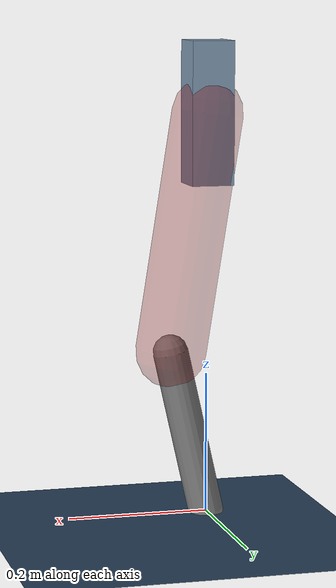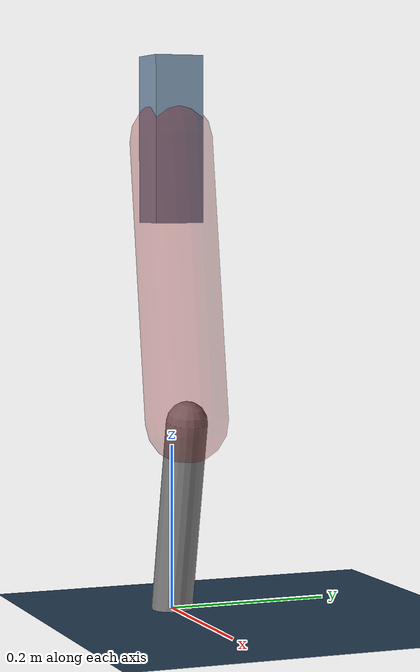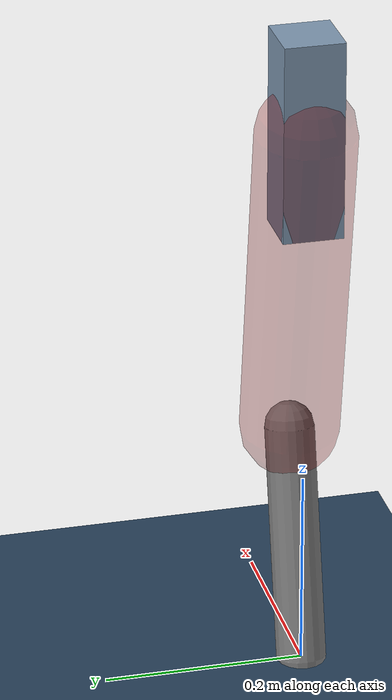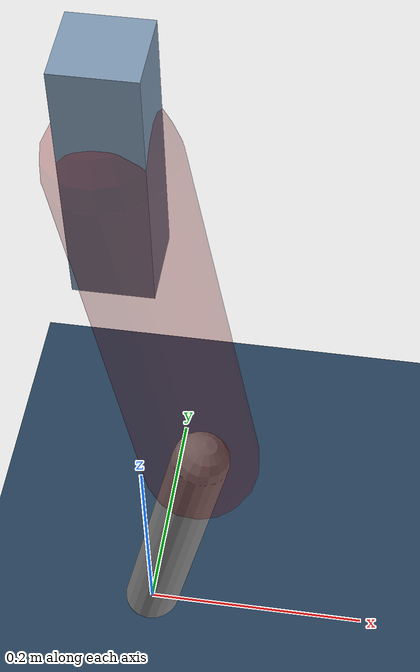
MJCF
<mujoco model="Hopper2D">
	<compiler inertiafromgeom="true" angle="radian" />
	<option timestep="0.001" integrator="implicit" cone="elliptic" solver="Newton" tolerance="1e-10" />

	<default>
		<geom contype="1" conaffinity="1" condim="3" friction="2 0.005 0.0001" solref="0.005 1" />
		<joint limited="true" damping="0.1" />
	</default>

	<asset>
		<texture name="skybox" type="skybox" builtin="gradient" rgb1=".4 .6 .8" rgb2="0 0 0" width="800" height="800" />
		<texture name="grid" type="2d" builtin="checker" rgb1=".1 .2 .3" rgb2=".2 .3 .4" width="300" height="300" mark="edge" markrgb=".2 .3 .4" />
		<material name="ground" texture="grid" texrepeat="1 1" texuniform="true" reflectance="0.1" />
		<material name="leg" rgba="0.5 0.6 0.7 1" />
	</asset>

	<worldbody>

		<geom name="floor" type="plane" size="5 5 0.25" material="ground" />

		<light directional="false" diffuse="0.8 0.8 0.8" specular="0.3 0.3 0.3" pos="0 0 2" dir="0 0 -1" />
		<light mode="targetbodycom" target="base" directional="false" diffuse="0.8 0.8 0.8" specular="0.3 0.3 0.3" pos="0 0 2" dir="0 0 -1" />

		<camera name="fixed" pos="0 -2 1" xyaxes="1 0 0 0 0 1" />
		<camera name="tracking" mode="trackcom" pos="0 -3 1" />

		<body name="root" pos="0 0 0.5708512306454582">
			<joint name="slide_x" type="slide" axis="1 0 0" range="-100 100" />
			<joint name="slide_z" type="slide" axis="0 0 1" range="0 10" />

			<body name="base" pos="0 0 0">
				<geom name="torso" type="box" size="0.03 0.03 0.1" mass="1.619" material="leg" />

				<body name="link1" pos="0 0 0" euler="0 1.415513354828196 0">
					<joint type="hinge" axis="0 -1 0" pos="0 0 0" name="hinge1" limited="true" range="-3.14 3.14" stiffness="0" damping="0.1" />
					<geom name="thigh" type="capsule" fromto="0 0 0 0.3413747896295669 0 0" size="0.05" rgba="0.5 0 0 0.3" mass="1.1024494109627874" />

					<body name="link2" pos="0.3413747896295669 0 0" euler="0 0.37757731334013156 0">
						<joint type="hinge" axis="0 -1 0" pos="0 0 0" name="hinge2" limited="true" range="-3.14 3.14" stiffness="0" damping="0.1" />
						<geom name="shank" type="capsule" fromto="0 0 0 0.23947644101589127 0 0" size="0.025" mass="0.43382879691430215" />

					</body>
				</body>
			</body>
		</body>
	</worldbody>

	<actuator>
		<motor name="torque1" joint="hinge1" ctrlrange="-47.88640876880205 47.88640876880205" ctrllimited="true" gear="1" />
		<motor name="torque2" joint="hinge2" ctrlrange="-31.97610147984768 31.97610147984768" ctrllimited="true" gear="1" />
	</actuator>
</mujoco>
